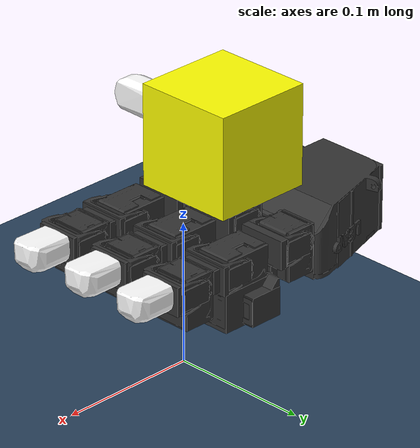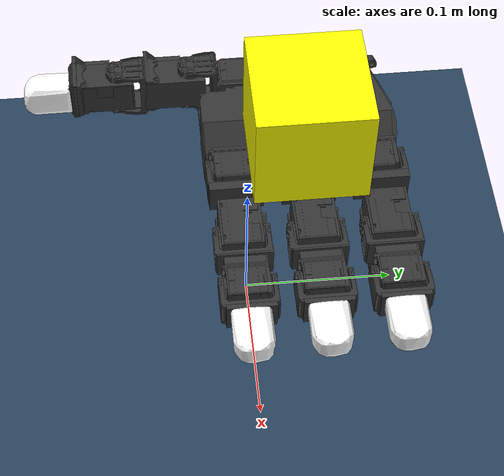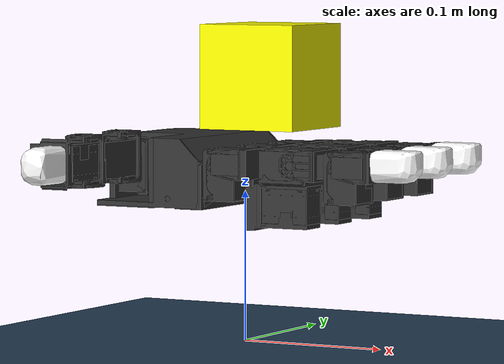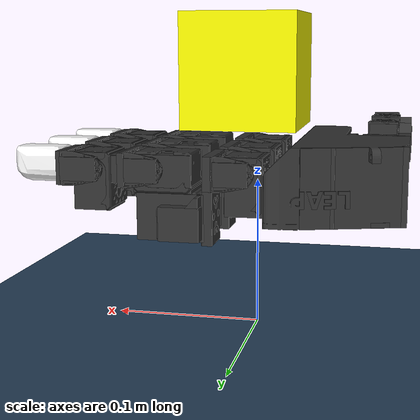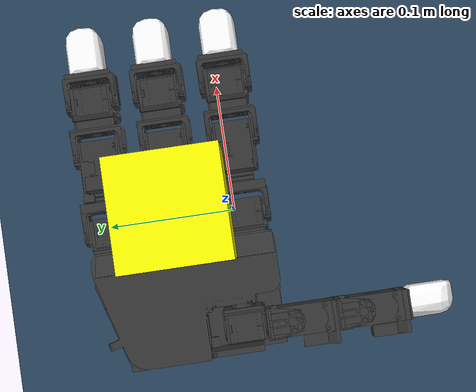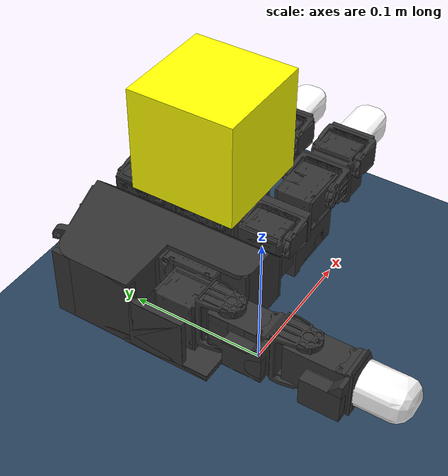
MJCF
<mujoco model="right leap hand scene">
  <include file="right_hand.xml"/>

  <statistic center="0 0 0.1" extent="0.3"/>
  <option gravity="4.9 0 -8.49"/>

  <visual>
    <headlight diffuse="0.6 0.6 0.6" ambient="0.3 0.3 0.3" specular="0 0 0"/>
    <rgba haze="0.15 0.25 0.35 1"/>
    <global azimuth="35" elevation="-50"/>
  </visual>

  <asset>
    <texture name='cube_surface' file="iris_block.png" gridsize="3 4" gridlayout=".U..LFRB.D.."/>
    <material name="obj_material" texture="cube_surface" specular="5" shininess=".0"/>

    <texture type="skybox" builtin="gradient" rgb1="0.3 0.5 0.7" rgb2="0 0 0" width="512" height="3072"/>
    <texture type="2d" name="groundplane" builtin="checker" mark="edge" rgb1="0.2 0.3 0.4" rgb2="0.1 0.2 0.3"
      markrgb="0.8 0.8 0.8" width="300" height="300"/>
    <material name="groundplane" texture="groundplane" texuniform="true" texrepeat="5 5" reflectance="0.2"/>
  </asset>

  <worldbody>
    <light pos="0 0 1" dir="0 0 -1" directional="true"/>
    <geom name="floor" size="0 0 0.05" type="plane" material="groundplane"/>
    <camera name="demo-cam" pos="-0.003 -0.393 0.317" xyaxes="1.000 -0.000 0.000 0.000 0.462 0.887"/>

    <body name="obj" >
        <freejoint name="obj_freejoint"/>
        <geom name="obj" type="box" material="obj_material" size="0.035 0.035 0.035" friction="0.5" rgba="1.0 1.0 0 0.99"
        pos="0.0 0.035 0.175" euler="0 0 0"
        />
    </body>

    <body name="obj_target_body" >
      <site name="obj_target" type="box" material="obj_material" size="0.035 0.035 0.035"
        rgba="1.0 1.0 0 0.1"
        pos="0.0 0.035 0.175" euler="0 0 0" />
    </body>

  </worldbody>

  <keyframe>
    <key name="key0"
    time="0.0"
    qpos="0.400818 1.19604 1.45509 0.282386 0.0144588 0.111579 1.1115 0.141504 -0.417234 1.40333 1.01115 1.23236 1.0524 1.09343 0.82938 1.38507 0.0256903 -0.00135759 0.0532087 0.991338 0.0535053 -0.119768 0.00639758"
    qvel="-6.02316e-15 5.34431e-14 5.36391e-14 2.93078e-16 -5.68701e-17 -1.2994e-15 -3.5167e-14 -6.5917e-15 -1.17189e-14 4.75419e-14 5.29862e-14 5.21497e-14 -5.45178e-14 5.32238e-14 -2.68282e-14 5.08046e-14 1.65086e-16 -2.99353e-17 -6.35419e-16 -1.70562e-15 -4.00827e-15 3.50432e-17"
    ctrl="0.3854 1.19462 1.44538 0.280375 0 0.22841 1.15351 0.142 -0.3854 1.40231 1.00287 1.23055 1.0561 1.09704 0.81915 1.38042"
    />

    <key name="key1"
    ctrl="0.0676 -0.59679 1.227475 0.78984 0.37288 -0.02094 0.605815 1.03064 0.34744 0.33504 1.04815 1.10288 1.19009 1.2 0.5 1.2"
    />

    <key name="key2"
    time="0.0"
    qpos="4.86424821e-02 -5.95508044e-01  1.22354720e+00  7.89939495e-01 3.07533247e-01 -1.64079020e-02  6.00379199e-01  1.03046619e+00 3.21226037e-01  3.36218670e-01  1.03772060e+00  1.10135942e+00 1.19778485e+00  1.20350511e+00  5.08479947e-01  1.20448273e+00 -1.24502032e-02  3.61684337e-02 -1.54406505e-03  9.77118353e-01"
    qvel="1.20018391e-15 -1.82869081e-14  5.15708924e-14 -2.23700401e-14 4.86354726e-07 -1.33439577e-07  1.38019700e-09  6.85624136e-10 -5.21398467e-07  3.42424191e-08 -1.29483674e-07  1.08809348e-07 -1.58268940e-07 -4.63390171e-07  2.22440887e-07  2.75895211e-07 2.74447825e-07 -7.05426845e-07 -3.89918542e-08 -2.94847721e-06"
    ctrl="0.0676 -0.59679 1.227475 0.78984 0.37288 -0.02094 0.605815 1.03064 0.34744 0.33504 1.04815 1.10288 1.19009 1.129015 1.0 1.0"
    />
  </keyframe>

</mujoco>

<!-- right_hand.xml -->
<mujoco model="leap_rh">
  <compiler angle="radian" meshdir="./assets/"/>
  <option integrator="implicitfast" cone="elliptic" impratio="100"/>

  <!-- mesh assets -->
  <asset>
    <material name="black" rgba="0.2 0.2 0.2 1"/>
    <material name="white" rgba="1 1 1 1"/>

    <mesh name="palm" file="palm_right.obj"/>
    <mesh name="base" file="base.obj"/>
    <mesh name="proximal" file="proximal.obj"/>
    <mesh name="medial" file="medial.obj"/>
    <mesh name="distal" file="distal.obj"/>
    <mesh name="tip" file="tip.obj"/>
    <mesh name="thumb_base" file="thumb_base.obj"/>
    <mesh name="thumb_proximal" file="thumb_proximal.obj"/>
    <mesh name="thumb_distal" file="thumb_distal.obj"/>
    <mesh name="thumb_tip" file="thumb_tip.obj"/>
  </asset>

  <!-- defaults -->
  <default>
    <!-- constraint stiffness -->
    <geom solimp="0.999 0.999 0.001 0.0001 1" solref="0.0001 1" friction=".2"/>

    <!-- actuator defaults -->
    <position kp="3.0" kv="0.01"/>
    <joint damping="0.03" frictionloss="0.001"/>

    <!-- geom class defaults -->
    <default class="visual">
      <geom group="1" type="mesh" contype="0" conaffinity="0" density="0" material="black"/>
    </default>
    <default class="collision">
      <geom material="black"/>
    </default>
    <default class="tip">
      <geom type="mesh" mesh="tip" friction="0.5" material="white"/>
    </default>
    <default class="thumb_tip">
      <geom type="mesh" mesh="thumb_tip" friction="0.5" material="white"/>
    </default>

    <!-- joint class defaults -->
    <default class="mcp">
      <joint pos="0 0 0" axis="0 0 -1" limited="true" range="-0.314 2.23"/>
      <position ctrlrange="-0.314 2.23"/>
    </default>
    <default class="rot">
      <joint pos="0 0 0" axis="0 0 -1" limited="true" range="-1.047 1.047"/>
      <position ctrlrange="-1.047 1.047"/>
    </default>
    <default class="pip">
      <joint pos="0 0 0" axis="0 0 -1" limited="true" range="-0.506 1.885"/>
      <position ctrlrange="-0.506 1.885"/>
    </default>
    <default class="dip">
      <joint pos="0 0 0" axis="0 0 -1" limited="true" range="-0.366 2.042"/>
      <position ctrlrange="-0.366 2.042"/>
    </default>
    <default class="thumb_cmc">
      <joint pos="0 0 0" axis="0 0 -1" limited="true" range="-0.349 2.094"/>
      <position ctrlrange="-0.349 2.094"/>
    </default>
    <default class="thumb_axl">
      <joint pos="0 0 0" axis="0 0 -1" limited="true" range="-0.349 2.094"/>
      <position ctrlrange="-0.349 2.094"/>
    </default>
    <default class="thumb_mcp">
      <joint pos="0 0 0" axis="0 0 -1" limited="true" range="-0.47 2.443"/>
      <position ctrlrange="-0.47 2.443"/>
    </default>
    <default class="thumb_ipl">
      <joint pos="0 0 0" axis="0 0 -1" limited="true" range="-1.34 1.88"/>
      <position ctrlrange="-1.34 1.88"/>
    </default>
  </default>

  <!-- collision filtering -->
  <contact>
    <!-- filter the palm from all other finger bodies except the tips -->
    <exclude body1="palm" body2="if_bs"/>
    <exclude body1="palm" body2="mf_bs"/>
    <exclude body1="palm" body2="rf_bs"/>
    <exclude body1="palm" body2="th_mp"/>

    <exclude body1="palm" body2="if_px"/>
    <exclude body1="palm" body2="mf_px"/>
    <exclude body1="palm" body2="rf_px"/>
    <exclude body1="palm" body2="th_bs"/>

    <exclude body1="palm" body2="if_md"/>
    <exclude body1="palm" body2="mf_md"/>
    <exclude body1="palm" body2="rf_md"/>
    <exclude body1="palm" body2="th_px"/>

    <!-- none of the base fingertip geoms can touch each other -->
    <exclude body1="if_bs" body2="mf_bs"/>
    <exclude body1="if_bs" body2="rf_bs"/>
    <exclude body1="mf_bs" body2="rf_bs"/>

    <exclude body1="th_mp" body2="if_bs"/>
    <exclude body1="th_mp" body2="mf_bs"/>
    <exclude body1="th_mp" body2="rf_bs"/>
  </contact>

  <!-- actuators -->
  <actuator>
    <!-- index -->
    <position name="if_mcp_act" joint="if_mcp" class="mcp"/>
    <position name="if_rot_act" joint="if_rot" class="rot"/>
    <position name="if_pip_act" joint="if_pip" class="pip"/>
    <position name="if_dip_act" joint="if_dip" class="dip"/>

    <!-- middle -->
    <position name="mf_mcp_act" joint="mf_mcp" class="mcp"/>
    <position name="mf_rot_act" joint="mf_rot" class="rot"/>
    <position name="mf_pip_act" joint="mf_pip" class="pip"/>
    <position name="mf_dip_act" joint="mf_dip" class="dip"/>

    <!-- ring -->
    <position name="rf_mcp_act" joint="rf_mcp" class="mcp"/>
    <position name="rf_rot_act" joint="rf_rot" class="rot"/>
    <position name="rf_pip_act" joint="rf_pip" class="pip"/>
    <position name="rf_dip_act" joint="rf_dip" class="dip"/>

    <!-- thumb -->
    <position name="th_cmc_act" joint="th_cmc" class="thumb_cmc"/>
    <position name="th_axl_act" joint="th_axl" class="thumb_axl"/>
    <position name="th_mcp_act" joint="th_mcp" class="thumb_mcp"/>
    <position name="th_ipl_act" joint="th_ipl" class="thumb_ipl"/>
  </actuator>

  <!-- sensors -->
  <sensor>
    <!-- index -->
    <jointpos name="if_mcp_sensor" joint="if_mcp"/>
    <jointpos name="if_rot_sensor" joint="if_rot"/>
    <jointpos name="if_pip_sensor" joint="if_pip"/>
    <jointpos name="if_dip_sensor" joint="if_dip"/>

    <!-- middle -->
    <jointpos name="mf_mcp_sensor" joint="mf_mcp"/>
    <jointpos name="mf_rot_sensor" joint="mf_rot"/>
    <jointpos name="mf_pip_sensor" joint="mf_pip"/>
    <jointpos name="mf_dip_sensor" joint="mf_dip"/>

    <!-- ring -->
    <jointpos name="rf_mcp_sensor" joint="rf_mcp"/>
    <jointpos name="rf_rot_sensor" joint="rf_rot"/>
    <jointpos name="rf_pip_sensor" joint="rf_pip"/>
    <jointpos name="rf_dip_sensor" joint="rf_dip"/>

    <!-- thumb -->
    <jointpos name="th_cmc_sensor" joint="th_cmc"/>
    <jointpos name="th_axl_sensor" joint="th_axl"/>
    <jointpos name="th_mcp_sensor" joint="th_mcp"/>
    <jointpos name="th_ipl_sensor" joint="th_ipl"/>
  </sensor>

  <worldbody>
    <body name="palm" pos="0 0 0.1" quat="0 1 0 0">
      <!-- palm -->
      <inertial pos="-0.049542 -0.042914 -0.010227" quat="0.565586 0.427629 -0.574956 0.408254" mass="0.237"
        diaginertia="0.000407345 0.000304759 0.000180736"/>
      <geom name="palm_visual" pos="-0.02 0.02575 -0.0347" quat="1 0 0 0" class="visual" mesh="palm"/>
      <geom name="palm_collision_1" size="0.011 0.013 0.017" pos="-0.009 0.008 -0.011" type="box" class="collision"/>
      <geom name="palm_collision_2" size="0.011 0.013 0.017" pos="-0.009 -0.037 -0.011" type="box" class="collision"/>
      <geom name="palm_collision_3" size="0.011 0.013 0.017" pos="-0.009 -0.082 -0.011" type="box" class="collision"/>
      <geom name="palm_collision_4" size="0.029 0.01 0.023" pos="-0.066 -0.078 -0.0115" quat="0.989016 0 0 -0.147806"
        type="box" class="collision"/>
      <geom name="palm_collision_5" size="0.01 0.06 0.015" pos="-0.03 -0.035 -0.003" type="box" class="collision"/>
      <geom name="palm_collision_6" size="0.005 0.06 0.01" pos="-0.032 -0.035 -0.024" quat="0.923956 0 0.382499 0"
        type="box" class="collision"/>
      <geom name="palm_collision_7" size="0.012 0.058 0.023" pos="-0.048 -0.033 -0.0115" type="box" class="collision"/>
      <geom name="palm_collision_8" size="0.022 0.026 0.023" pos="-0.078 -0.053 -0.0115" type="box" class="collision"/>
      <geom name="palm_collision_9" size="0.002 0.018 0.017" pos="-0.098 -0.009 -0.006" type="box" class="collision"/>
      <geom name="palm_collision_10" size="0.022 0.028 0.002" pos="-0.078 -0.003 0.01" type="box" class="collision"/>

      <!-- index -->
      <body name="if_bs" pos="-0.007 0.023 -0.0187" quat="0.500003 0.5 0.5 -0.499997">
        <inertial pos="-0.022516 0.033882 0.016359" quat="0.388092 0.677951 -0.247713 0.573067" mass="0.044"
          diaginertia="1.74972e-05 1.61504e-05 7.21342e-06"/>
        <joint name="if_mcp" class="mcp"/>
        <geom name="if_bs_visual" pos="0.0084 0.0077 0.01465" quat="1 0 0 0" class="visual" mesh="base"/>
        <geom name="if_bs_collision_1" size="0.01 0.003 0.017" pos="0 0.018 0.0147" type="box" class="collision"/>
        <geom name="if_bs_collision_2" size="0.014 0.02 0.01" pos="-0.027 0.042 0.015" type="box" class="collision"/>
        <geom name="if_bs_collision_3" size="0.017 0.003 0.01" pos="-0.0262 0.02 0.0146" type="box" class="collision"/>
        <geom name="if_bs_collision_4" size="0.01 0.012 0.004" pos="-0.0295 0.035 0.029" type="box" class="collision"/>
        <geom name="if_bs_collision_5" size="0.007 0.01 0.002" pos="0 0.005 0.03" type="box" class="collision"/>
        <geom name="if_bs_collision_6" size="0.007 0.01 0.002" pos="0 0.005 -0.001" type="box" class="collision"/>

        <body name="if_px" pos="-0.0122 0.0381 0.0145" quat="0.500003 -0.5 -0.499997 0.5">
          <inertial pos="0.0075 -0.0002 -0.011" quat="0 0.707107 0 0.707107" mass="0.032"
            diaginertia="4.8853e-06 4.3733e-06 3.0933e-06"/>
          <joint name="if_rot" class="rot"/>
          <geom name="if_px_visual" pos="0.0096 0.0002 0.0007" quat="0.500003 -0.5 -0.5 -0.499997" class="visual"
            mesh="proximal"/>
          <geom name="if_px_collision" size="0.017 0.013 0.011" pos="0.0075 -0.0002 -0.011" type="box"
            class="collision"/>

          <body name="if_md" pos="0.015 0.0143 -0.013" quat="0.500003 0.5 -0.5 0.499997">
            <inertial pos="0.0054215 -0.029148 0.015" quat="0.687228 0.687228 0.166487 0.166487" mass="0.037"
              diaginertia="8.28004e-06 8.1598e-06 5.39516e-06"/>
            <joint name="if_pip" class="pip"/>
            <geom name="if_md_visual" pos="0.0211 -0.0084 0.0097" quat="2.67949e-08 -1 0 0" class="visual"
              mesh="medial"/>
            <geom name="if_md_collision_1" size="0.008 0.003 0.013" pos="0 -0.02 0.015" type="box" class="collision"/>
            <geom name="if_md_collision_2" size="0.01 0.002 0.017" pos="0 -0.016 0.015" type="box" class="collision"/>
            <geom name="if_md_collision_3" size="0.007 0.01 0.002" pos="0 -0.0045 0.03" type="box" class="collision"/>
            <geom name="if_md_collision_4" size="0.007 0.01 0.002" pos="0 -0.0045 0" type="box" class="collision"/>
            <geom name="if_md_collision_5" size="0.017 0.011 0.013" pos="0.0075 -0.035 0.015" type="box"
              class="collision"/>

            <body name="if_ds" pos="0 -0.0361 0.0002">
              <inertial pos="-0.0008794 -0.027019 0.014594" quat="0.702905 0.710643 -0.0212937 -0.0214203" mass="0.016"
                diaginertia="3.71863e-06 3.02396e-06 1.6518e-06"/>
              <joint name="if_dip" class="dip"/>
              <geom name="if_ds_visual" pos="0.0132 -0.0061 0.0144" quat="2.67949e-08 1 0 0" class="visual"
                mesh="distal"/>
              <geom name="if_ds_collision_1" size="0.01 0.003 0.015" pos="0 -0.017 0.015" type="box" class="collision"/>
              <geom name="if_ds_collision_2" size="0.007 0.011 0.002" pos="0 -0.006 0.03" type="box" class="collision"/>
              <geom name="if_ds_collision_3" size="0.007 0.011 0.002" pos="0 -0.006 -0.001" type="box"
                class="collision"/>

              <geom name="if_tip" class="tip"/>
              <site name="if_tip" pos="0 -0.05 0.015" group="4"/>
            </body>
          </body>
        </body>
      </body>
      <!-- index -->

      <!-- middle -->
      <body name="mf_bs" pos="-0.0071 -0.0224 -0.0187" quat="0.500003 0.5 0.5 -0.499997">
        <inertial pos="-0.022516 0.033882 0.016359" quat="0.388092 0.677951 -0.247713 0.573067" mass="0.044"
          diaginertia="1.74972e-05 1.61504e-05 7.21342e-06"/>
        <joint name="mf_mcp" class="mcp"/>
        <geom name="mf_bs_visual" pos="0.0084 0.0077 0.01465" quat="1 0 0 0" class="visual" mesh="base"/>
        <geom name="mf_bs_collision_1" size="0.01 0.003 0.017" pos="0 0.018 0.0147" type="box" class="collision"/>
        <geom name="mf_bs_collision_2" size="0.014 0.02 0.01" pos="-0.027 0.042 0.015" type="box" class="collision"/>
        <geom name="mf_bs_collision_3" size="0.017 0.003 0.01" pos="-0.0262 0.02 0.0146" type="box" class="collision"/>
        <geom name="mf_bs_collision_4" size="0.01 0.012 0.004" pos="-0.0295 0.035 0.029" type="box" class="collision"/>
        <geom name="mf_bs_collision_5" size="0.007 0.01 0.002" pos="0 0.005 0.03" type="box" class="collision"/>
        <geom name="mf_bs_collision_6" size="0.007 0.01 0.002" pos="0 0.005 -0.001" type="box" class="collision"/>

        <body name="mf_px" pos="-0.0122 0.0381 0.0145" quat="0.500003 -0.5 -0.499997 0.5">
          <inertial pos="0.0075 -0.0002 -0.011" quat="0 0.707107 0 0.707107" mass="0.032"
            diaginertia="4.8853e-06 4.3733e-06 3.0933e-06"/>
          <joint name="mf_rot" class="rot"/>
          <geom name="mf_px_visual" pos="0.0096 0.0003 0.0007" quat="0.500003 -0.5 -0.5 -0.499997" class="visual"
            mesh="proximal"/>
          <geom name="mf_px_collision" size="0.017 0.013 0.011" pos="0.0075 -0.0002 -0.011" type="box"
            class="collision"/>

          <body name="mf_md" pos="0.015 0.0143 -0.013" quat="0.500003 0.5 -0.5 0.499997">
            <inertial pos="0.0054215 -0.029148 0.015" quat="0.687228 0.687228 0.166487 0.166487" mass="0.037"
              diaginertia="8.28004e-06 8.1598e-06 5.39516e-06"/>
            <joint name="mf_pip" class="pip"/>
            <geom name="mf_md_visual" pos="0.0211 -0.0084 0.0097" quat="1.32679e-06 -1 0 0" class="visual"
              mesh="medial"/>
            <geom name="mf_md_collision_1" size="0.008 0.003 0.013" pos="0 -0.02 0.015" type="box" class="collision"/>
            <geom name="mf_md_collision_2" size="0.01 0.002 0.017" pos="0 -0.016 0.015" type="box" class="collision"/>
            <geom name="mf_md_collision_3" size="0.007 0.01 0.002" pos="0 -0.0045 0.03" type="box" class="collision"/>
            <geom name="mf_md_collision_4" size="0.007 0.01 0.002" pos="0 -0.0045 0" type="box" class="collision"/>
            <geom name="mf_md_collision_5" size="0.017 0.011 0.013" pos="0.0075 -0.035 0.015" type="box"
              class="collision"/>

            <body name="mf_ds" pos="0 -0.0361 0.0002">
              <inertial pos="-0.0008794 -0.027019 0.014594" quat="0.702905 0.710643 -0.0212937 -0.0214203" mass="0.016"
                diaginertia="3.71863e-06 3.02396e-06 1.6518e-06"/>
              <joint name="mf_dip" class="dip"/>
              <geom name="mf_ds_visual" pos="0.0132 -0.0061 0.0145" quat="1.32679e-06 1 0 0" class="visual"
                mesh="distal"/>
              <geom name="mf_ds_collision_1" size="0.01 0.003 0.015" pos="0 -0.017 0.015" type="box" class="collision"/>
              <geom name="mf_ds_collision_2" size="0.007 0.011 0.002" pos="0 -0.006 0.03" type="box" class="collision"/>
              <geom name="mf_ds_collision_3" size="0.007 0.011 0.002" pos="0 -0.006 -0.001" type="box"
                class="collision"/>

              <geom name="mf_tip" class="tip"/>
              <site name="mf_tip" pos="0 -0.05 0.015" group="4"/>
            </body>
          </body>
        </body>
      </body>
      <!-- middle -->

      <!-- ring -->
      <body name="rf_bs" pos="-0.00709 -0.0678 -0.0187" quat="0.500003 0.5 0.5 -0.499997">
        <inertial pos="-0.022516 0.033882 0.016359" quat="0.388092 0.677951 -0.247713 0.573067" mass="0.044"
          diaginertia="1.74972e-05 1.61504e-05 7.21342e-06"/>
        <joint name="rf_mcp" class="mcp"/>
        <geom name="rf_bs_visual" pos="0.0084 0.0077 0.01465" quat="1 0 0 0" class="visual" mesh="base"/>
        <geom name="rf_bs_collision_1" size="0.01 0.003 0.017" pos="0 0.018 0.0147" type="box" class="collision"/>
        <geom name="rf_bs_collision_2" size="0.014 0.02 0.01" pos="-0.027 0.042 0.015" type="box" class="collision"/>
        <geom name="rf_bs_collision_3" size="0.017 0.003 0.01" pos="-0.0262 0.02 0.0146" type="box" class="collision"/>
        <geom name="rf_bs_collision_4" size="0.01 0.012 0.004" pos="-0.0295 0.035 0.029" type="box" class="collision"/>
        <geom name="rf_bs_collision_5" size="0.007 0.01 0.002" pos="0 0.005 0.03" type="box" class="collision"/>
        <geom name="rf_bs_collision_6" size="0.007 0.01 0.002" pos="0 0.005 -0.001" type="box" class="collision"/>

        <body name="rf_px" pos="-0.0122 0.0381 0.0145" quat="0.500003 -0.5 -0.499997 0.5">
          <inertial pos="0.0075 -0.0002 -0.011" quat="0 0.707107 0 0.707107" mass="0.032"
            diaginertia="4.8853e-06 4.3733e-06 3.0933e-06"/>
          <joint name="rf_rot" class="rot"/>
          <geom name="rf_px_visual" pos="0.0096 0.0003 0.0007" quat="0.500003 -0.5 -0.5 -0.499997" class="visual"
            mesh="proximal"/>
          <geom name="rf_px_collision" size="0.017 0.013 0.011" pos="0.0075 -0.0002 -0.011" type="box"
            class="collision"/>

          <body name="rf_md" pos="0.015 0.0143 -0.013" quat="0.500003 0.5 -0.5 0.499997">
            <inertial pos="0.0054215 -0.029148 0.015" quat="0.687228 0.687228 0.166487 0.166487" mass="0.037"
              diaginertia="8.28004e-06 8.1598e-06 5.39516e-06"/>
            <joint name="rf_pip" class="pip"/>
            <geom name="rf_md_visual" pos="0.0211 -0.0084 0.0097" quat="1.32679e-06 -1 0 0" class="visual"
              mesh="medial"/>
            <geom name="rf_md_collision_1" size="0.008 0.003 0.013" pos="0 -0.02 0.015" type="box" class="collision"/>
            <geom name="rf_md_collision_2" size="0.01 0.002 0.017" pos="0 -0.016 0.015" type="box" class="collision"/>
            <geom name="rf_md_collision_3" size="0.007 0.01 0.002" pos="0 -0.0045 0.03" type="box" class="collision"/>
            <geom name="rf_md_collision_4" size="0.007 0.01 0.002" pos="0 -0.0045 0" type="box" class="collision"/>
            <geom name="rf_md_collision_5" size="0.017 0.011 0.013" pos="0.0075 -0.035 0.015" type="box"
              class="collision"/>

            <body name="rf_ds" pos="0 -0.03609 0.0002">
              <inertial pos="-0.0008794 -0.027019 0.014594" quat="0.702905 0.710643 -0.0212937 -0.0214203" mass="0.016"
                diaginertia="3.71863e-06 3.02396e-06 1.6518e-06"/>
              <joint name="rf_dip" class="dip"/>
              <geom name="rf_ds_visual" pos="0.0132 -0.0061 0.0145" quat="1.32679e-06 1 0 0" class="visual"
                mesh="distal"/>
              <geom name="rf_ds_collision_1" size="0.01 0.003 0.015" pos="0 -0.017 0.015" type="box" class="collision"/>
              <geom name="rf_ds_collision_2" size="0.007 0.011 0.002" pos="0 -0.006 0.03" type="box" class="collision"/>
              <geom name="rf_ds_collision_3" size="0.007 0.011 0.002" pos="0 -0.006 -0.001" type="box"
                class="collision"/>

              <geom name="rf_tip" class="tip"/>
              <site name="rf_tip" pos="0 -0.05 0.015" group="4"/>
            </body>
          </body>
        </body>
      </body>
      <!-- ring -->

      <!-- thumb -->
      <body name="th_mp" pos="-0.0693 -0.0012 -0.0216" quat="0.707109 0 0.707105 0">
        <inertial pos="0.0075 -0.0002 -0.011" quat="0 0.707107 0 0.707107" mass="0.032"
          diaginertia="4.8853e-06 4.3733e-06 3.0933e-06"/>
        <joint name="th_cmc" class="thumb_cmc"/>
        <geom name="th_mp_visual" pos="-0.0053 0.0003 0.00078" quat="0.500003 -0.5 -0.5 -0.499997" class="visual"
          mesh="proximal"/>
        <geom name="th_mp_collision" size="0.017 0.013 0.011" pos="-0.0075 -0.0002 -0.011" type="box"
          class="collision"/>

        <body name="th_bs" pos="0 0.0143 -0.013" quat="0.500003 0.5 -0.5 0.499997">
          <inertial pos="0 0 -0.0070806" quat="0.707107 0.707107 0 0" mass="0.003"
            diaginertia="6.1932e-07 5.351e-07 2.1516e-07"/>
          <joint name="th_axl" class="thumb_axl"/>
          <geom name="th_bs_visual" pos="0.01196 0 -0.0158" quat="0.707109 0.707105 0 0" class="visual"
            mesh="thumb_base"/>
          <geom name="th_bs_collision_1" size="0.009 0.0165 0.002" pos="0 0 -0.0015" type="box" class="collision"/>
          <geom name="th_bs_collision_2" size="0.007 0.002 0.01" pos="0 -0.015 -0.013" type="box" class="collision"/>
          <geom name="th_bs_collision_3" size="0.007 0.002 0.01" pos="0 0.015 -0.013" type="box" class="collision"/>

          <body name="th_px" pos="0 0.0145 -0.017" quat="0.707109 -0.707105 0 0">
            <inertial pos="-0.0020593 0.015912 -0.013733" quat="0.698518 0.697382 -0.104933 0.121324" mass="0.038"
              diaginertia="9.87104e-06 9.32653e-06 4.36203e-06"/>
            <joint name="th_mcp" class="thumb_mcp"/>
            <geom name="th_px_visual" pos="0.0439 0.0579 -0.0086" quat="1 0 0 0" class="visual" mesh="thumb_proximal"/>
            <geom name="th_px_collision_1" size="0.01 0.02 0.012" pos="0 0.0105 -0.014" type="box" class="collision"/>
            <geom name="th_px_collision_2" size="0.01 0.002 0.016" pos="0 0.031 -0.015" type="box" class="collision"/>
            <geom name="th_px_collision_3" size="0.007 0.01 0.002" pos="0 0.042 0.001" type="box" class="collision"/>
            <geom name="th_px_collision_4" size="0.007 0.01 0.002" pos="0 0.042 -0.029" type="box" class="collision"/>
            <geom name="th_px_collision_5" size="0.005 0.012 0.009" pos="-0.0135 0.0175 -0.011656" type="box"
              class="collision"/>

            <body name="th_ds" pos="0 0.0466 0.0002" quat="1.32679e-06 0 0 1">
              <inertial pos="0.00096191 -0.024203 -0.014419" quat="0.35287 0.311272 -0.632839 0.614904" mass="0.049"
                diaginertia="2.08591e-05 2.0402e-05 4.71335e-06"/>
              <joint name="th_ipl" class="thumb_ipl"/>
              <geom name="th_ds_visual" pos="0.0625 0.0784 0.0489" quat="1 0 0 0" class="visual" mesh="thumb_distal"/>
              <geom name="th_ds_collision_1" size="0.01 0.018 0.012" pos="0 -0.0085 -0.015" type="box"
                class="collision"/>
              <geom name="th_ds_collision_2" size="0.01 0.002 0.015" pos="0 -0.029 -0.014" type="box"
                class="collision"/>
              <geom name="th_ds_collision_3" size="0.004 0.012 0.009" pos="0.015 -0.0175 -0.0115" type="box"
                class="collision"/>

              <geom name="th_tip" class="thumb_tip"/>
              <site name="th_tip" pos="0 -0.06 -0.015" group="4"/>
            </body>
          </body>
        </body>
      </body>
      <!-- thumb -->
    </body>
    <!-- palm -->
  </worldbody>
</mujoco>
